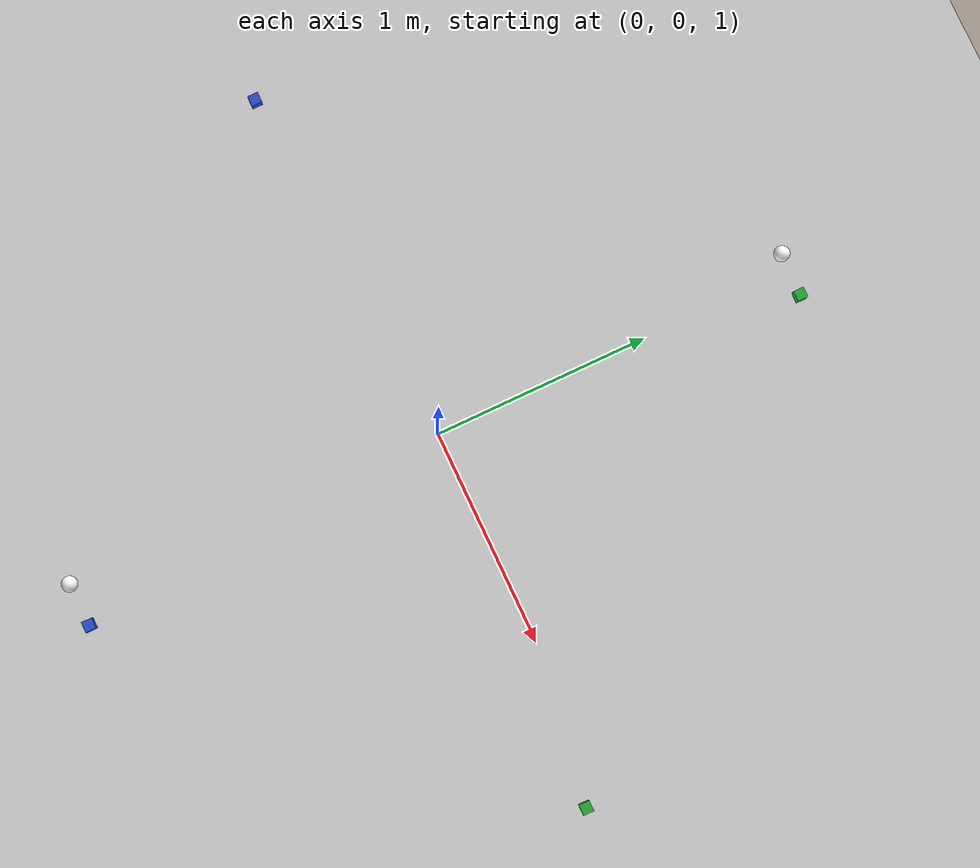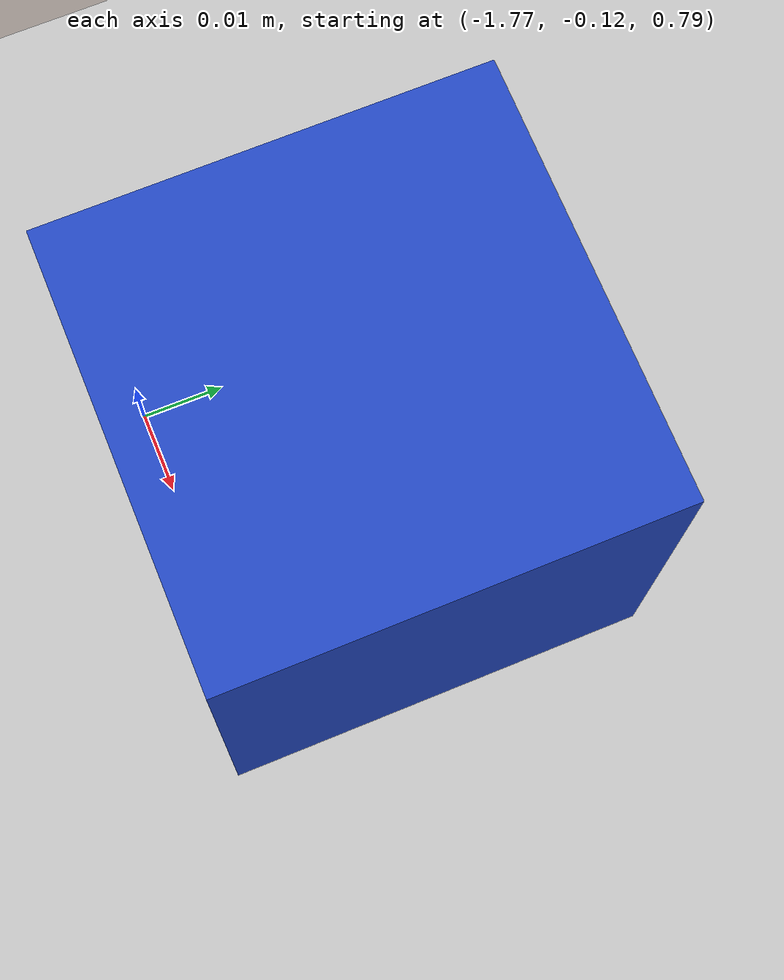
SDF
<sdf version="1.6">
 <world name="default">
  <include><uri>model://ground_plane</uri></include>
  <include><uri>model://sun</uri></include>
  <light name="spot_light" type="spot">
   <pose>0 0 25 0 -0 0</pose>
   <diffuse>1 1 1 1</diffuse>
   <specular>1 1 1 1</specular>
   <direction>0 0 -1</direction>
   <attenuation>
    <range>100</range>
    <constant>0.1</constant>
    <linear>0.01</linear>
    <quadratic>0.001</quadratic>
   </attenuation>
   <cast_shadows>0</cast_shadows>
   <spot><inner_angle>0.9</inner_angle><outer_angle>1.5</outer_angle><falloff>1</falloff></spot>
  </light>
  <include><uri>model://GreenCube</uri><name>cube0</name><pose>1.75 -0.1 0.815 0 0 0</pose></include>
  <include><uri>model://cricket_ball</uri><name>ball2</name><pose>-0.1 1.75 0.815 0 0 0</pose></include>
  <include><uri>model://GreenCube</uri><name>cube2</name><pose>0.1 1.75 0.815 0 0 0</pose></include>
  <include><uri>model://cricket_ball</uri><name>ball3</name><pose>-0.1 -1.75 0.815 0 0 0</pose></include>
  <include><uri>model://BlueCube</uri><name>cube3</name><pose>0.1 -1.75 0.815 0 0 0</pose></include>
  <include><uri>model://BlueCube</uri><name>cube5</name><pose>-1.75 -0.1 0.815 0 0 0</pose></include>
 </world>
</sdf>

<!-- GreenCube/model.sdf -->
<sdf version='1.6'>
  <model name='GreenCube'>
    <link name='link_2'>
      <pose frame=''>0 0 0 0 -0 0</pose>
      <inertial>
        <mass>0.009375</mass>
        <inertia>
          <ixx>3.91e-06</ixx>
          <ixy>0</ixy>
          <ixz>0</ixz>
          <iyy>3.91e-06</iyy>
          <iyz>0</iyz>
          <izz>3.91e-06</izz>
        </inertia>
        <pose frame=''>0 0 0 0 -0 0</pose>
      </inertial>
      <gravity>1</gravity>
      <self_collide>0</self_collide>
      <kinematic>0</kinematic>
      <enable_wind>0</enable_wind>
      <visual name='visual'>
        <pose frame=''>0 0 0 0 -0 0</pose>
        <geometry>
          <box>
            <size>0.05 0.05 0.05</size>
          </box>
        </geometry>
        <material>
          <lighting>1</lighting>
          <script>
            <uri>file://media/materials/scripts/gazebo.material</uri>
            <name>Gazebo/Green</name>
          </script>
          <ambient>0 1 0 1</ambient>
          <diffuse>0 1 0 1</diffuse>
          <specular>0 1 0 1</specular>
          <emissive>0 0 0 1</emissive>
          <shader type='vertex'>
            <normal_map>__default__</normal_map>
          </shader>
        </material>
        <cast_shadows>1</cast_shadows>
        <transparency>0</transparency>
      </visual>
      <collision name='collision'>
        <laser_retro>0</laser_retro>
        <max_contacts>10</max_contacts>
        <pose frame=''>0 0 0 0 -0 0</pose>
        <geometry>
          <box>
            <size>0.05 0.05 0.05</size>
          </box>
        </geometry>
        <surface>
          <friction>
            <ode>
              <mu>1</mu>
              <mu2>1</mu2>
              <fdir1>0 0 0</fdir1>
              <slip1>0</slip1>
              <slip2>0</slip2>
            </ode>
            <torsional>
              <coefficient>1</coefficient>
              <patch_radius>0</patch_radius>
              <surface_radius>0</surface_radius>
              <use_patch_radius>1</use_patch_radius>
              <ode>
                <slip>0</slip>
              </ode>
            </torsional>
          </friction>
          <bounce>
            <restitution_coefficient>0</restitution_coefficient>
            <threshold>1e+06</threshold>
          </bounce>
          <contact>
            <collide_without_contact>0</collide_without_contact>
            <collide_without_contact_bitmask>1</collide_without_contact_bitmask>
            <collide_bitmask>1</collide_bitmask>
            <ode>
              <soft_cfm>0</soft_cfm>
              <soft_erp>0.2</soft_erp>
              <kp>1e+13</kp>
              <kd>1</kd>
              <max_vel>0.01</max_vel>
              <min_depth>0</min_depth>
            </ode>
            <bullet>
              <split_impulse>1</split_impulse>
              <split_impulse_penetration_threshold>-0.01</split_impulse_penetration_threshold>
              <soft_cfm>0</soft_cfm>
              <soft_erp>0.2</soft_erp>
              <kp>1e+13</kp>
              <kd>1</kd>
            </bullet>
          </contact>
        </surface>
      </collision>
    </link>
    <static>0</static>
    <allow_auto_disable>1</allow_auto_disable>
  </model>
</sdf>

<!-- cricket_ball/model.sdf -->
<sdf version="1.5">
  <model name="cricket_ball">
    <link name="link">
      <pose>0 0 0.0375 0 0 0</pose>
      <inertial>
        <mass>0.1467</mass>
        <inertia>
          <ixx>8.251875e-05</ixx>
          <ixy>0</ixy>
          <ixz>0</ixz>
          <iyy>8.251875e-05</iyy>
          <iyz>0</iyz>
          <izz>8.251875e-05</izz>
        </inertia>
      </inertial>

      <collision name="collision">
        <geometry>
          <sphere>
            <radius>0.0375</radius>
          </sphere>
        </geometry>
        <surface>
          <contact>
            <!-- Red Pine coefficients for longitudinal axis of the wood
                 according to:
                 http://www.fpl.fs.fed.us/documnts/fplgtr/fplgtr113/ch04.pdf -->
            <poissons_ratio>0.347</poissons_ratio>
            <elastic_modulus>8.8e+09</elastic_modulus>
            <ode>
              <kp>100000</kp>
              <kd>100</kd>
              <max_vel>100.0</max_vel>
              <min_depth>0.001</min_depth>
            </ode>
          </contact>
          <friction>
            <torsional>
              <coefficient>1.0</coefficient>
              <use_patch_radius>0</use_patch_radius>
              <surface_radius>0.01</surface_radius>
            </torsional>
          </friction>
        </surface>
      </collision>

      <visual name="visual">
        <geometry>
          <sphere>
            <radius>0.0375</radius>
          </sphere>
        </geometry>
        <material><diffuse>1 1 1 1</diffuse><specular>0.1 0.1 0.1 1</specular></material>
      </visual>

      <!-- approximate rolling friction -->
      <velocity_decay>
        <linear>0.00</linear>
        <angular>0.005</angular>
      </velocity_decay>
    </link>
  </model>
</sdf>

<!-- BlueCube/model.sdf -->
<sdf version='1.6'>
  <model name='BlueCube'>
    <link name='link_2'>
      <pose frame=''>0 0 0 0 -0 0</pose>
      <inertial>
        <mass>0.009375</mass>
        <inertia>
          <ixx>3.91e-06</ixx>
          <ixy>0</ixy>
          <ixz>0</ixz>
          <iyy>3.91e-06</iyy>
          <iyz>0</iyz>
          <izz>3.91e-06</izz>
        </inertia>
        <pose frame=''>0 0 0 0 -0 0</pose>
      </inertial>
      <gravity>1</gravity>
      <self_collide>0</self_collide>
      <kinematic>0</kinematic>
      <enable_wind>0</enable_wind>
      <visual name='visual'>
        <pose frame=''>0 0 0 0 -0 0</pose>
        <geometry>
          <box>
            <size>0.05 0.05 0.05</size>
          </box>
        </geometry>
        <material>
          <lighting>1</lighting>
          <script>
            <uri>file://media/materials/scripts/gazebo.material</uri>
            <name>Gazebo/Blue</name>
          </script>
          <ambient>0 0 1 1</ambient>
          <diffuse>0 0 1 1</diffuse>
          <specular>0 0 1 1</specular>
          <emissive>0 0 0 1</emissive>
          <shader type='vertex'>
            <normal_map>__default__</normal_map>
          </shader>
        </material>
        <cast_shadows>1</cast_shadows>
        <transparency>0</transparency>
      </visual>
      <collision name='collision'>
        <laser_retro>0</laser_retro>
        <max_contacts>10</max_contacts>
        <pose frame=''>0 0 0 0 -0 0</pose>
        <geometry>
          <box>
            <size>0.05 0.05 0.05</size>
          </box>
        </geometry>
        <surface>
          <friction>
            <ode>
              <mu>1</mu>
              <mu2>1</mu2>
              <fdir1>0 0 0</fdir1>
              <slip1>0</slip1>
              <slip2>0</slip2>
            </ode>
            <torsional>
              <coefficient>1</coefficient>
              <patch_radius>0</patch_radius>
              <surface_radius>0</surface_radius>
              <use_patch_radius>1</use_patch_radius>
              <ode>
                <slip>0</slip>
              </ode>
            </torsional>
          </friction>
          <bounce>
            <restitution_coefficient>0</restitution_coefficient>
            <threshold>1e+06</threshold>
          </bounce>
          <contact>
            <collide_without_contact>0</collide_without_contact>
            <collide_without_contact_bitmask>1</collide_without_contact_bitmask>
            <collide_bitmask>1</collide_bitmask>
            <ode>
              <soft_cfm>0</soft_cfm>
              <soft_erp>0.2</soft_erp>
              <kp>1e+13</kp>
              <kd>1</kd>
              <max_vel>0.01</max_vel>
              <min_depth>0</min_depth>
            </ode>
            <bullet>
              <split_impulse>1</split_impulse>
              <split_impulse_penetration_threshold>-0.01</split_impulse_penetration_threshold>
              <soft_cfm>0</soft_cfm>
              <soft_erp>0.2</soft_erp>
              <kp>1e+13</kp>
              <kd>1</kd>
            </bullet>
          </contact>
        </surface>
      </collision>
    </link>
    <static>0</static>
    <allow_auto_disable>1</allow_auto_disable>
  </model>
</sdf>
